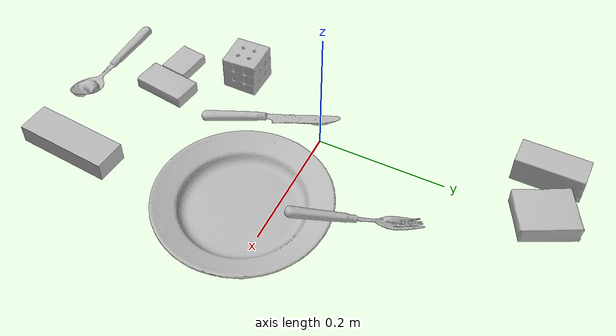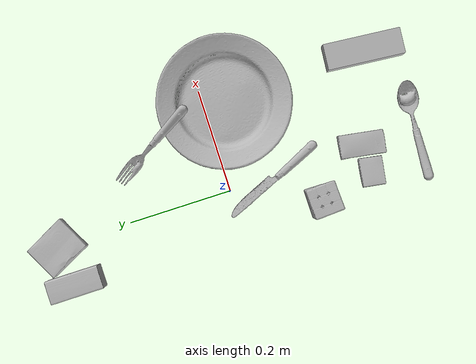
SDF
<sdf version="1.4">
  <world name="default">
    <light name="light1" type="point">
      <pose>0 0 1 0 0 0</pose>
      <diffuse>3 3 3 1</diffuse>
      <specular>3 3 3 1</specular>
    </light>
    <light name="light2" type="point">
      <pose>0 0.5 2 0 0 0</pose>
      <diffuse>1 1 1 1</diffuse>
      <specular>1 1 1 1</specular>
    </light>
    <light name="light3" type="point">
      <pose>0 0.5 2 0 0 0</pose>
      <diffuse>3 3 3 1</diffuse>
      <specular>3 3 3 1</specular>
    </light>
    <scene>
      <ambient>0.7 0.7 0.7</ambient>
    </scene>
    <model name="box11">
      <link name="link_box11">
        <collision name="default">
          <geometry>
            <mesh>
              <uri>model://jenga/collision_meshes/collision.obj</uri>
              <scale>1.0 1.0 1.0</scale>
            </mesh>
          </geometry>
          <surface>
            <friction>
              <ode>
                <mu>0.5</mu>
                <mu2>0.5</mu2>
              </ode>
            </friction>
          <contact>
        <ode>
            <max_vel>0</max_vel>
            <min_depth>0.0001</min_depth>
            <kp>1e8</kp>
        </ode>
    </contact></surface>
        </collision>
        <visual name="default">
          <geometry>
            <mesh>
              <uri>model://jenga/visual_meshes/visual.dae</uri>
              <scale>1.0 1.0 1.0</scale>
            </mesh>
          </geometry>
        </visual>
        <inertial>
          <mass>0.24099597334861755</mass>
          <pose>-2.502855807051674e-07 -0.00010250010382151231 -4.0923401684267446e-05 0.0 -7.34215461761844e-07 0.0</pose>
          <inertia>
            <ixx>6.668944e-05</ixx>
            <iyy>0.0004518858</iyy>
            <izz>0.00048242652</izz>
            <ixy>0</ixy>
            <ixz>0</ixz>
            <iyz>0</iyz>
          </inertia>
        </inertial>
      </link>
      <pose>0.17884381115436554 -0.3242383301258087 0.014999994076788425 4.847281554746683e-09 5.373281157565529e-10 -1.6564965423518527</pose>
    </model>
    <model name="box12">
      <link name="link_box12">
        <collision name="default">
          <geometry>
            <mesh>
              <uri>model://wood_block/collision_meshes/collision.obj</uri>
              <scale>0.5 0.5 0.5</scale>
            </mesh>
          </geometry>
          <surface>
            <friction>
              <ode>
                <mu>0.5</mu>
                <mu2>0.5</mu2>
              </ode>
            </friction>
          <contact>
        <ode>
            <max_vel>0</max_vel>
            <min_depth>0.0001</min_depth>
            <kp>1e8</kp>
        </ode>
    </contact></surface>
        </collision>
        <visual name="default">
          <geometry>
            <mesh>
              <uri>model://wood_block/visual_meshes/visual.dae</uri>
              <scale>0.5 0.5 0.5</scale>
            </mesh>
          </geometry>
        </visual>
        <inertial>
          <mass>0.14152581989765167</mass>
          <pose>-2.9066577553749084e-06 -0.000285404734313488 0.00013204291462898254 -0.05220812938960465 -0.005192695343712196 -0.006861377662393293</pose>
          <inertia>
            <ixx>4.7345737e-05</ixx>
            <iyy>0.0001495652</iyy>
            <izz>0.00014900575</izz>
            <ixy>0</ixy>
            <ixz>0</ixz>
            <iyz>0</iyz>
          </inertia>
        </inertial>
      </link>
      <pose>-0.07805025577545166 0.33030274510383606 0.02262926660478115 -0.005208620818139029 0.005718733353926912 1.5755181684777837</pose>
    </model>
    <model name="box13">
      <link name="link_box13">
        <collision name="default">
          <geometry>
            <mesh>
              <uri>model://sugar_box/collision_meshes/collision.obj</uri>
              <scale>0.5 0.5 0.5</scale>
            </mesh>
          </geometry>
          <surface>
            <friction>
              <ode>
                <mu>0.5</mu>
                <mu2>0.5</mu2>
              </ode>
            </friction>
          <contact>
        <ode>
            <max_vel>0</max_vel>
            <min_depth>0.0001</min_depth>
            <kp>1e8</kp>
        </ode>
    </contact></surface>
        </collision>
        <visual name="default">
          <geometry>
            <mesh>
              <uri>model://sugar_box/visual_meshes/visual.dae</uri>
              <scale>0.5 0.5 0.5</scale>
            </mesh>
          </geometry>
        </visual>
        <inertial>
          <mass>0.08336380124092102</mass>
          <pose>0.0005171863595023751 1.924554817378521e-05 -0.00018182402709499002 -0.0004046263001201691 0.0010506636386254094 0.0026153790217303746</pose>
          <inertia>
            <ixx>1.7364619e-05</ixx>
            <iyy>5.612603e-05</iyy>
            <izz>6.718955e-05</izz>
            <ixy>0</ixy>
            <ixz>0</ixz>
            <iyz>0</iyz>
          </inertia>
        </inertial>
      </link>
      <pose>0.007565104868263006 -0.2661897540092468 0.011399304494261742 0.0007752479947344688 -0.023432573576144245 1.4139057651480658</pose>
    </model>
    <model name="box21">
      <link name="link_box21">
        <collision name="default">
          <geometry>
            <mesh>
              <uri>model://pudding_box/collision_meshes/collision.obj</uri>
              <scale>0.5 0.5 0.5</scale>
            </mesh>
          </geometry>
          <surface>
            <friction>
              <ode>
                <mu>0.5</mu>
                <mu2>0.5</mu2>
              </ode>
            </friction>
          <contact>
        <ode>
            <max_vel>0</max_vel>
            <min_depth>0.0001</min_depth>
            <kp>1e8</kp>
        </ode>
    </contact></surface>
        </collision>
        <visual name="default">
          <geometry>
            <mesh>
              <uri>model://pudding_box/visual_meshes/visual.dae</uri>
              <scale>0.5 0.5 0.5</scale>
            </mesh>
          </geometry>
        </visual>
        <inertial>
          <mass>0.025778822600841522</mass>
          <pose>0.00024474109522998333 0.00040339428232982755 -0.0002594413817860186 0.005213100851918505 -0.006603799640504885 0.02007982516037135</pose>
          <inertia>
            <ixx>7.285408e-06</ixx>
            <iyy>4.901674e-06</iyy>
            <izz>1.07588085e-05</izz>
            <ixy>0</ixy>
            <ixz>0</ixz>
            <iyz>0</iyz>
          </inertia>
        </inertial>
      </link>
      <pose>-0.04731752723455429 -0.2687244117259979 0.009862902574241161 0.022348517233182548 -0.01139173796399105 1.4119267896347942</pose>
    </model>
    <model name="box22">
      <link name="link_box22">
        <collision name="default">
          <geometry>
            <mesh>
              <uri>model://rubiks_cube/collision_meshes/collision.obj</uri>
              <scale>1.0 1.0 1.0</scale>
            </mesh>
          </geometry>
          <surface>
            <friction>
              <ode>
                <mu>0.5</mu>
                <mu2>0.5</mu2>
              </ode>
            </friction>
          <contact>
        <ode>
            <max_vel>0</max_vel>
            <min_depth>0.0001</min_depth>
            <kp>1e8</kp>
        </ode>
    </contact></surface>
        </collision>
        <visual name="default">
          <geometry>
            <mesh>
              <uri>model://rubiks_cube/visual_meshes/visual.dae</uri>
              <scale>1.0 1.0 1.0</scale>
            </mesh>
          </geometry>
        </visual>
        <inertial>
          <mass>0.22147096693515778</mass>
          <pose>2.6721041649580002e-05 5.256967051536776e-05 -7.264316082000732e-06 -0.05467273282600652 -0.09814100107642566 -0.034457018786431724</pose>
          <inertia>
            <ixx>0.00012237758</ixx>
            <iyy>0.00012180688</iyy>
            <izz>0.00012339167</izz>
            <ixy>0</ixy>
            <ixz>0</ixz>
            <iyz>0</iyz>
          </inertia>
        </inertial>
      </link>
      <pose>-0.07024876028299332 -0.1629505455493927 0.028679005801677704 -1.6205381735289764e-06 5.205977456021151e-07 -1.5351130534898285</pose>
    </model>
    <model name="box23">
      <link name="link_box23">
        <collision name="default">
          <geometry>
            <mesh>
              <uri>model://gelatin_box/collision_meshes/collision.obj</uri>
              <scale>1.0 1.0 1.0</scale>
            </mesh>
          </geometry>
          <surface>
            <friction>
              <ode>
                <mu>0.5</mu>
                <mu2>0.5</mu2>
              </ode>
            </friction>
          <contact>
        <ode>
            <max_vel>0</max_vel>
            <min_depth>0.0001</min_depth>
            <kp>1e8</kp>
        </ode>
    </contact></surface>
        </collision>
        <visual name="default">
          <geometry>
            <mesh>
              <uri>model://gelatin_box/visual_meshes/visual.dae</uri>
              <scale>1.0 1.0 1.0</scale>
            </mesh>
          </geometry>
        </visual>
        <inertial>
          <mass>0.20053431391716003</mass>
          <pose>0.0004319618456065655 0.00011156871914863586 -0.00036403207923285663 -0.001050372330881514 -0.004755818219920532 0.016440563197859918</pose>
          <inertia>
            <ixx>0.00014156084</ixx>
            <iyy>0.00010111618</iyy>
            <izz>0.00021548718</izz>
            <ixy>0</ixy>
            <ixz>0</ixz>
            <iyz>0</iyz>
          </inertia>
        </inertial>
      </link>
      <pose>-0.0030706122051924467 0.3448718786239624 0.015168312937021255 0.00559740530560837 -0.007304450046918097 -2.6714326318996475</pose>
    </model>
    <model name="plate1">
      <link name="link_plate1">
        <collision name="default">
          <geometry>
            <mesh>
              <uri>model://plate/collision_meshes/collision.obj</uri>
              <scale>1.0 1.0 1.0</scale>
            </mesh>
          </geometry>
          <surface>
            <friction>
              <ode>
                <mu>0.5</mu>
                <mu2>0.5</mu2>
              </ode>
            </friction>
          <contact>
        <ode>
            <max_vel>0</max_vel>
            <min_depth>0.0001</min_depth>
            <kp>1e8</kp>
        </ode>
    </contact></surface>
        </collision>
        <visual name="default">
          <geometry>
            <mesh>
              <uri>model://plate/visual_meshes/visual.dae</uri>
              <scale>1.0 1.0 1.0</scale>
            </mesh>
          </geometry>
        </visual>
        <inertial>
          <mass>0.1705944687128067</mass>
          <pose>-0.0006044638575986028 0.0002782570372801274 -0.0010561983799561858 0.002218806973518856 -0.003225464946202784 0.4526031622217862</pose>
          <inertia>
            <ixx>0.0007980444</ixx>
            <iyy>0.0007904114</iyy>
            <izz>0.0015608557</izz>
            <ixy>0</ixy>
            <ixz>0</ixz>
            <iyz>0</iyz>
          </inertia>
        </inertial>
      </link>
      <pose>0.16564840078353882 -0.04102426394820213 0.01373305544257164 5.4463975592582323e-08 -6.720066446141067e-07 -0.9213099687506605</pose>
    </model>
    <model name="silverware1">
      <link name="link_silverware1">
        <collision name="default">
          <geometry>
            <mesh>
              <uri>model://fork/collision_meshes/collision.obj</uri>
              <scale>1.0 1.0 1.0</scale>
            </mesh>
          </geometry>
          <surface>
            <friction>
              <ode>
                <mu>0.5</mu>
                <mu2>0.5</mu2>
              </ode>
            </friction>
          <contact>
        <ode>
            <max_vel>0</max_vel>
            <min_depth>0.0001</min_depth>
            <kp>1e8</kp>
        </ode>
    </contact></surface>
        </collision>
        <visual name="default">
          <geometry>
            <mesh>
              <uri>model://fork/visual_meshes/visual.dae</uri>
              <scale>1.0 1.0 1.0</scale>
            </mesh>
          </geometry>
        </visual>
        <inertial>
          <mass>0.02693658135831356</mass>
          <pose>-0.02957003191113472 0.00046588244731538 0.0003218860365450382 -0.013551533598057301 -0.010977833518912038 0.014453896181446386</pose>
          <inertia>
            <ixx>9.442797e-07</ixx>
            <iyy>7.032368e-05</iyy>
            <izz>7.074603e-05</izz>
            <ixy>0</ixy>
            <ixz>0</ixz>
            <iyz>0</iyz>
          </inertia>
        </inertial>
      </link>
      <pose>0.12877607345581055 0.11335471272468567 0.024646800011396408 -0.2689483101572099 0.25758609489079415 2.0849046215207956</pose>
    </model>
    <model name="silverware2">
      <link name="link_silverware2">
        <collision name="default">
          <geometry>
            <mesh>
              <uri>model://knife/collision_meshes/collision.obj</uri>
              <scale>1.0 1.0 1.0</scale>
            </mesh>
          </geometry>
          <surface>
            <friction>
              <ode>
                <mu>0.5</mu>
                <mu2>0.5</mu2>
              </ode>
            </friction>
          <contact>
        <ode>
            <max_vel>0</max_vel>
            <min_depth>0.0001</min_depth>
            <kp>1e8</kp>
        </ode>
    </contact></surface>
        </collision>
        <visual name="default">
          <geometry>
            <mesh>
              <uri>model://knife/visual_meshes/visual.dae</uri>
              <scale>1.0 1.0 1.0</scale>
            </mesh>
          </geometry>
        </visual>
        <inertial>
          <mass>0.029087698087096214</mass>
          <pose>-0.023785242810845375 0.0015275123296305537 5.0620237743714824e-05 0.07305335090844457 0.017248415402536993 -0.007409830271159857</pose>
          <inertia>
            <ixx>8.256269e-07</ixx>
            <iyy>0.00011175022</iyy>
            <izz>0.00011201614</izz>
            <ixy>0</ixy>
            <ixz>0</ixz>
            <iyz>0</iyz>
          </inertia>
        </inertial>
      </link>
      <pose>-0.003023877739906311 -0.08560999482870102 0.007946578785777092 -0.023844705166589392 -0.014543241790445633 1.977264896787483</pose>
    </model>
    <model name="silverware3">
      <link name="link_silverware3">
        <collision name="default">
          <geometry>
            <mesh>
              <uri>model://spoon/collision_meshes/collision.obj</uri>
              <scale>1.0 1.0 1.0</scale>
            </mesh>
          </geometry>
          <surface>
            <friction>
              <ode>
                <mu>0.5</mu>
                <mu2>0.5</mu2>
              </ode>
            </friction>
          <contact>
        <ode>
            <max_vel>0</max_vel>
            <min_depth>0.0001</min_depth>
            <kp>1e8</kp>
        </ode>
    </contact></surface>
        </collision>
        <visual name="default">
          <geometry>
            <mesh>
              <uri>model://spoon/visual_meshes/visual.dae</uri>
              <scale>1.0 1.0 1.0</scale>
            </mesh>
          </geometry>
        </visual>
        <inertial>
          <mass>0.04163059964776039</mass>
          <pose>-0.005526324268430471 -0.001603418029844761 -0.0007271656068041921 0.035215733596471024 -0.03906582179646946 0.006150610371924991</pose>
          <inertia>
            <ixx>2.3155617e-06</ixx>
            <iyy>0.00015840305</iyy>
            <izz>0.00015954502</izz>
            <ixy>0</ixy>
            <ixz>0</ixz>
            <iyz>0</iyz>
          </inertia>
        </inertial>
      </link>
      <pose>0.0014177793636918068 -0.37345823645591736 0.008385268971323967 0.006728733443541699 0.026892983158554793 -0.06110330318970161</pose>
    </model>
  <physics type="ode">
      <max_contacts>50</max_contacts>
      <ode>
        <solver>
          <type>quick</type>
          <iters>75</iters>
        </solver>
        <constraints>
          <contact_max_correcting_vel>0</contact_max_correcting_vel>
          <contact_surface_layer>0</contact_surface_layer>
        </constraints>
      </ode>
    </physics></world>
</sdf>
